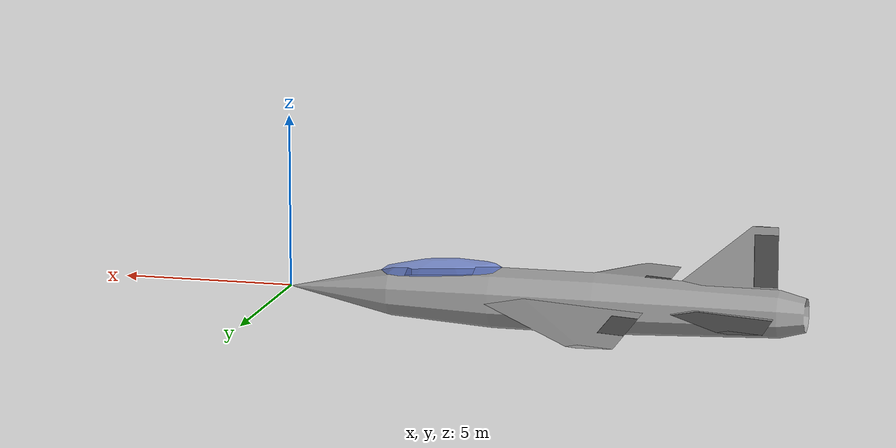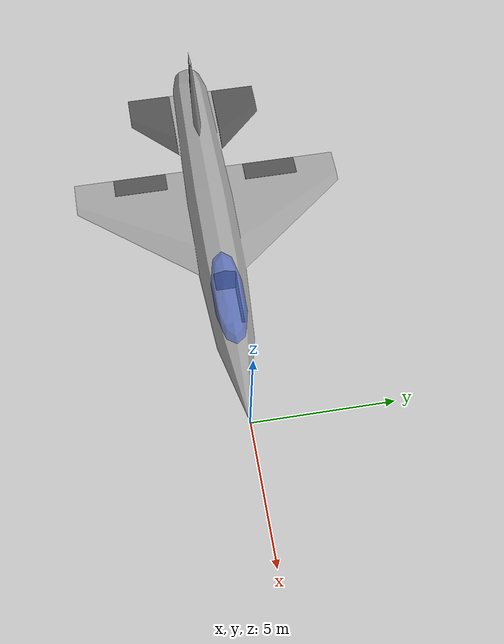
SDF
<?xml version='1.0'?>
<sdf version='1.6'>
  <model name="f16">

    <link name='airframe'>
      <inertial>
        <pose>8 0 0 0 0 0</pose>
      </inertial>
      <collision name='collision'>
        <geometry>
          <mesh>
            <uri>model://f16/meshes/stl/airframe.stl</uri>
          </mesh>
        </geometry>
      </collision>
      <visual name='visual'>
        <cast_shadows>0</cast_shadows>
        <geometry>
          <mesh>
            <uri>model://f16/meshes/stl/airframe.stl</uri>
          </mesh>
        </geometry>
        <material>
          <script>
            <name>Gazebo/Grey</name>
          </script>
        </material>
      </visual>
    </link>

    <link name='canopy'>
      <kinematic>true</kinematic>
      <visual name='visual'>
        <cast_shadows>0</cast_shadows>
        <geometry>
          <mesh>
            <uri>model://f16/meshes/stl/canopy.stl</uri>
          </mesh>
        </geometry>
        <material>
          <script>
            <name>Gazebo/BlueTransparent</name>
          </script>
        </material>
      </visual>
    </link>

    <joint name='canopy_joint' type='ball'>
      <parent>airframe</parent>
      <child>canopy</child>
      <pose>-6.5 0 1 0 0 0</pose>
      <axis>
        <xyz>0 1 0</xyz>
      </axis>
    </joint>

    <link name='left_aileron'>
      <kinematic>true</kinematic>
      <gravity>false</gravity>
      <visual name='visual'>
        <cast_shadows>0</cast_shadows>
        <geometry>
          <mesh>
            <uri>model://f16/meshes/stl/left_aileron.stl</uri>
          </mesh>
        </geometry>
        <material>
          <script>
            <name>Gazebo/DarkGrey</name>
          </script>
        </material>
      </visual>

    </link>

    <joint name='left_aileron' type='revolute'>
      <child>left_aileron</child>
      <parent>airframe</parent>
      <pose>-9.8 2.5 0 0 0 0</pose>
      <axis>
        <xyz>0 1 0</xyz>
        <limit>
          <lower>-1</lower>
          <upper>1</upper>
        </limit>
      </axis>
    </joint>

    <link name='right_aileron'>
      <kinematic>true</kinematic>
      <gravity>false</gravity>
      <visual name='visual'>
        <cast_shadows>0</cast_shadows>
        <geometry>
          <mesh>
            <uri>model://f16/meshes/stl/right_aileron.stl</uri>
          </mesh>
        </geometry>
        <material>
          <script>
            <name>Gazebo/DarkGrey</name>
          </script>
        </material>
      </visual>
    </link>

    <joint name='right_aileron' type='revolute'>
      <child>right_aileron</child>
      <parent>airframe</parent>
      <pose>-9.8 -2.5 0 0 0 0</pose>
      <axis>
        <xyz>0 1 0</xyz>
        <limit>
          <lower>-1</lower>
          <upper>1</upper>
        </limit>
      </axis>
    </joint>

    <link name='rudder'>
      <kinematic>true</kinematic>
      <gravity>false</gravity>
      <visual name='visual'>
        <cast_shadows>0</cast_shadows>
        <geometry>
          <mesh>
            <uri>model://f16/meshes/stl/rudder.stl</uri>
          </mesh>
        </geometry>
        <material>
          <script>
            <name>Gazebo/DarkGrey</name>
          </script>
        </material>
      </visual>

    </link>

    <joint name='rudder' type='revolute'>
      <child>rudder</child>
      <parent>airframe</parent>
      <pose>-13.5 0 0 0 0 0</pose>
      <axis>
        <xyz>0 0 1</xyz>
        <limit>
          <lower>-1</lower>
          <upper>1</upper>
        </limit>
      </axis>
    </joint>

    <link name='left_elevator'>
      <kinematic>true</kinematic>
      <gravity>false</gravity>
      <visual name='visual'>
        <cast_shadows>0</cast_shadows>
        <geometry>
          <mesh>
            <uri>model://f16/meshes/stl/left_elevator.stl</uri>
          </mesh>
        </geometry>
        <material>
          <script>
            <name>Gazebo/DarkGrey</name>
          </script>
        </material>
      </visual>

    </link>

    <joint name='left_elevator' type='revolute'>
      <child>left_elevator</child>
      <parent>airframe</parent>
      <pose>-12.5 1 0 0 0 0</pose>
      <axis>
        <xyz>0 1 0</xyz>
        <limit>
          <lower>-1</lower>
          <upper>1</upper>
        </limit>
      </axis>
    </joint>

    <link name='right_elevator'>
      <kinematic>true</kinematic>
      <gravity>false</gravity>
      <visual name='visual'>
        <cast_shadows>0</cast_shadows>
        <geometry>
          <mesh>
            <uri>model://f16/meshes/stl/right_elevator.stl</uri>
          </mesh>
        </geometry>
        <material>
          <script>
            <name>Gazebo/DarkGrey</name>
          </script>
        </material>
      </visual>

    </link>

    <joint name='right_elevator' type='revolute'>
      <child>right_elevator</child>
      <parent>airframe</parent>
      <pose>-12.5 -1 0 0 0 0</pose>
      <axis>
        <xyz>0 1 0</xyz>
        <limit>
          <lower>-1</lower>
          <upper>1</upper>
        </limit>
      </axis>
    </joint>

  <plugin name="f16_plugin" filename="libF16Plugin.so">
    <left_aileron>left_aileron</left_aileron>
    <right_aileron>right_aileron</right_aileron>
    <left_elevator>left_elevator</left_elevator>
    <right_elevator>right_elevator</right_elevator>
    <rudder>rudder</rudder>
  </plugin>

  </model>
</sdf>

<!-- vim: set et fenc=utf-8 ft=xml ff=unix sts=0 sw=2 ts=2 : -->
